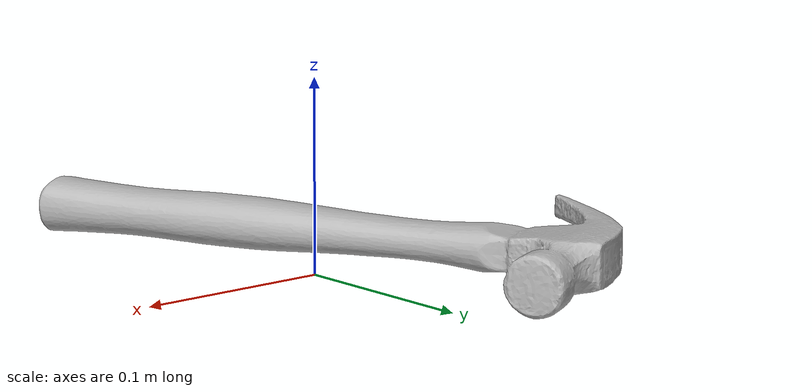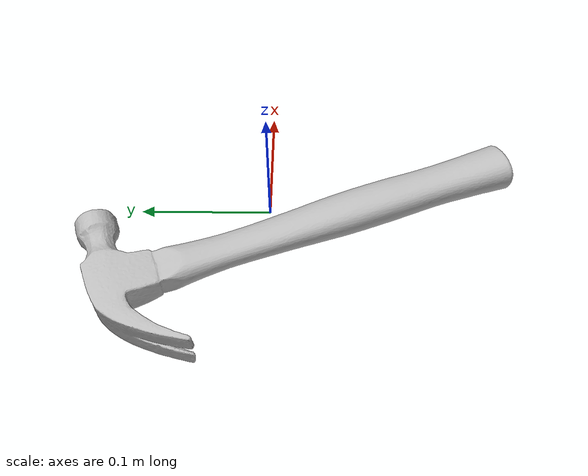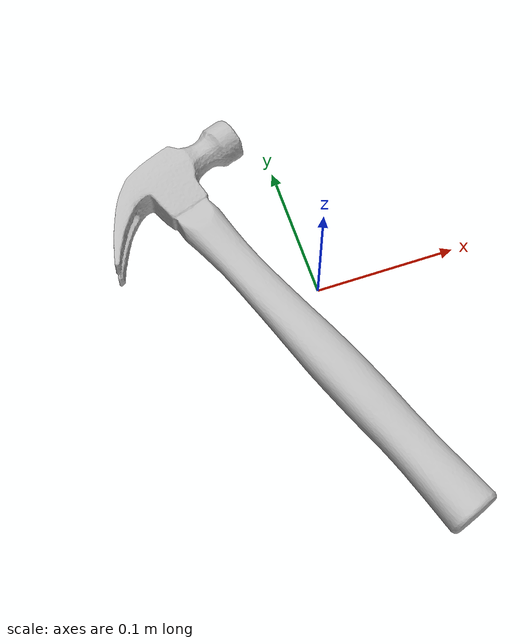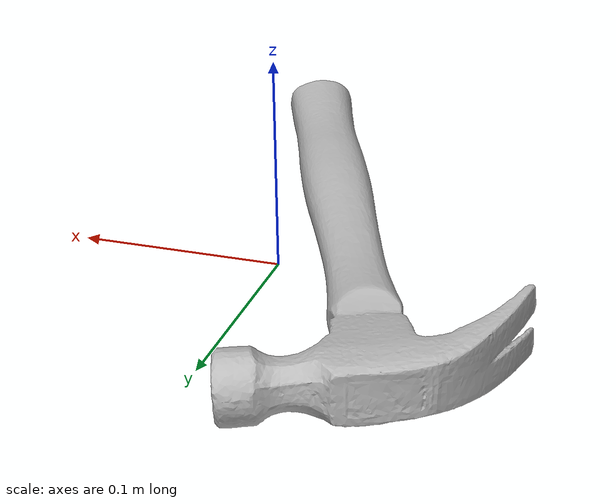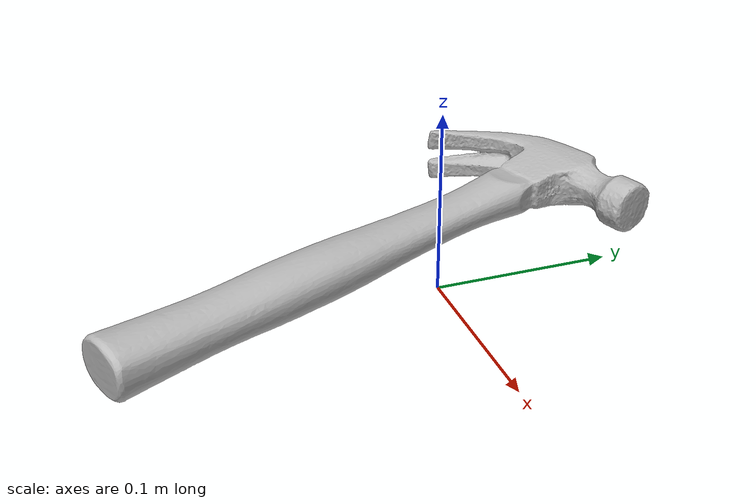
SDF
<?xml version='1.0'?>
<sdf version="1.4">
  <model name="hammer">
    <static>false</static>
    <link name="link">
      <inertial>
        <pose>-0.028570860769310643 -0.012672673714671625 0.015653484146085365 -1.392212475849602 -1.5439736609005625 0.18273929130965663</pose>
        <mass>0.00025894043237553564</mass>
        <inertia>
          <ixx>3.0777686441060466e-06</ixx>
          <ixy>-2.5674952487423044e-25</ixy>
          <ixz>5.193937136517346e-22</ixz>
          <iyy>3.0006065150009704e-06</iyy>
          <iyz>8.274548368865819e-23</iyz>
          <izz>9.993910910349299e-08</izz>
        </inertia>
      </inertial>
      <collision name="collision">
        <geometry>
          <mesh>
            <!-- Use a downsampled mesh for collisions -->
            <uri>model://048_hammer/google_16k/048_hammer.obj</uri>
            </mesh>
        </geometry>
        <surface>
          <friction>
            <ode>
              <mu>0.9</mu>
              <mu2>0.9</mu2>
            </ode>
          </friction>
          <contact>
            <ode>
              <kp>1000000000000.0</kp>
              <kd>1</kd>
              <min_depth>0.0001</min_depth>
              <max_vel>0.01</max_vel>
            </ode>
          </contact>
          <bounce>
            <restitution_coefficient>0.1</restitution_coefficient>
            <threshold>1000.0</threshold>
          </bounce>
        </surface>
      </collision>
      <visual name="visual">
        <geometry>
          <mesh>
            <uri>model://048_hammer/google_16k/048_hammer.dae</uri>
            </mesh>
        </geometry>
      </visual>
    </link>
  </model>
</sdf>
